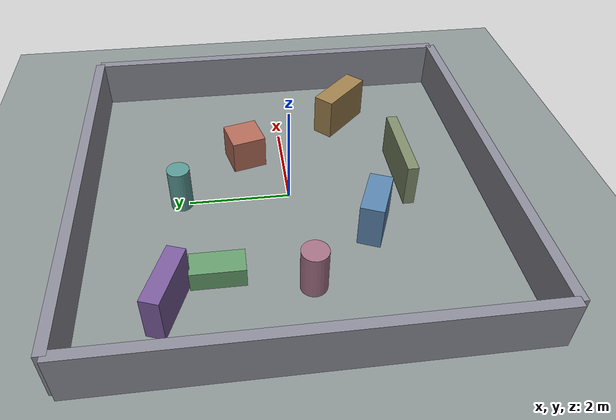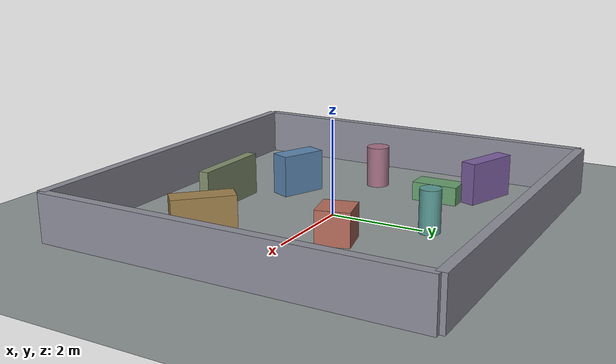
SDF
<?xml version="1.0"?>
<sdf version="1.9">
  <world name="rover_test_world">
    <plugin filename="gz-sim-physics-system" name="gz::sim::systems::Physics"/>
    <plugin filename="gz-sim-user-commands-system" name="gz::sim::systems::UserCommands"/>
    <plugin filename="gz-sim-scene-broadcaster-system" name="gz::sim::systems::SceneBroadcaster"/>
    <plugin filename="gz-sim-sensors-system" name="gz::sim::systems::Sensors">
      <render_engine>ogre2</render_engine>
    </plugin>

    <gravity>0 0 -9.81</gravity>
    <magnetic_field>6e-06 2.3e-05 -4.2e-05</magnetic_field>
    <atmosphere type="adiabatic"/>

    <scene>
      <ambient>0.45 0.45 0.45 1</ambient>
      <background>0.78 0.82 0.86 1</background>
      <shadows>true</shadows>
    </scene>

    <light name="sun" type="directional">
      <cast_shadows>true</cast_shadows>
      <pose>0 0 10 0 0 0</pose>
      <diffuse>0.8 0.8 0.8 1</diffuse>
      <specular>0.2 0.2 0.2 1</specular>
      <direction>-0.4 0.2 -0.9</direction>
    </light>

    <model name="ground_plane">
      <static>true</static>
      <link name="link">
        <collision name="collision">
          <geometry>
            <plane>
              <normal>0 0 1</normal>
              <size>20 20</size>
            </plane>
          </geometry>
        </collision>
        <visual name="visual">
          <geometry>
            <plane>
              <normal>0 0 1</normal>
              <size>20 20</size>
            </plane>
          </geometry>
          <material>
            <ambient>0.55 0.58 0.58 1</ambient>
            <diffuse>0.55 0.58 0.58 1</diffuse>
          </material>
        </visual>
      </link>
    </model>

    <model name="north_wall">
      <static>true</static>
      <pose>0 4.0 0.5 0 0 0</pose>
      <link name="link">
        <collision name="collision">
          <geometry><box><size>8.0 0.2 1.0</size></box></geometry>
        </collision>
        <visual name="visual">
          <geometry><box><size>8.0 0.2 1.0</size></box></geometry>
          <material><ambient>0.55 0.55 0.60 1</ambient><diffuse>0.55 0.55 0.60 1</diffuse></material>
        </visual>
      </link>
    </model>

    <model name="south_wall">
      <static>true</static>
      <pose>0 -4.0 0.5 0 0 0</pose>
      <link name="link">
        <collision name="collision">
          <geometry><box><size>8.0 0.2 1.0</size></box></geometry>
        </collision>
        <visual name="visual">
          <geometry><box><size>8.0 0.2 1.0</size></box></geometry>
          <material><ambient>0.55 0.55 0.60 1</ambient><diffuse>0.55 0.55 0.60 1</diffuse></material>
        </visual>
      </link>
    </model>

    <model name="west_wall">
      <static>true</static>
      <pose>-4.0 0 0.5 0 0 0</pose>
      <link name="link">
        <collision name="collision">
          <geometry><box><size>0.2 8.0 1.0</size></box></geometry>
        </collision>
        <visual name="visual">
          <geometry><box><size>0.2 8.0 1.0</size></box></geometry>
          <material><ambient>0.55 0.55 0.60 1</ambient><diffuse>0.55 0.55 0.60 1</diffuse></material>
        </visual>
      </link>
    </model>

    <model name="east_wall">
      <static>true</static>
      <pose>4.0 0 0.5 0 0 0</pose>
      <link name="link">
        <collision name="collision">
          <geometry><box><size>0.2 8.0 1.0</size></box></geometry>
        </collision>
        <visual name="visual">
          <geometry><box><size>0.2 8.0 1.0</size></box></geometry>
          <material><ambient>0.55 0.55 0.60 1</ambient><diffuse>0.55 0.55 0.60 1</diffuse></material>
        </visual>
      </link>
    </model>

    <model name="obstacle_box_a">
      <static>true</static>
      <pose>1.3 0.8 0.35 0 0 0.25</pose>
      <link name="link">
        <collision name="collision">
          <geometry><box><size>0.7 0.7 0.7</size></box></geometry>
        </collision>
        <visual name="visual">
          <geometry><box><size>0.7 0.7 0.7</size></box></geometry>
          <material><ambient>0.70 0.42 0.35 1</ambient><diffuse>0.70 0.42 0.35 1</diffuse></material>
        </visual>
      </link>
    </model>

    <model name="obstacle_box_b">
      <static>true</static>
      <pose>-1.1 -1.5 0.45 0 0 -0.4</pose>
      <link name="link">
        <collision name="collision">
          <geometry><box><size>1.0 0.45 0.9</size></box></geometry>
        </collision>
        <visual name="visual">
          <geometry><box><size>1.0 0.45 0.9</size></box></geometry>
          <material><ambient>0.35 0.52 0.68 1</ambient><diffuse>0.35 0.52 0.68 1</diffuse></material>
        </visual>
      </link>
    </model>

    <model name="obstacle_box_c">
      <static>true</static>
      <pose>2.45 -1.45 0.45 0 0 0.78</pose>
      <link name="link">
        <collision name="collision">
          <geometry><box><size>0.45 1.25 0.9</size></box></geometry>
        </collision>
        <visual name="visual">
          <geometry><box><size>0.45 1.25 0.9</size></box></geometry>
          <material><ambient>0.62 0.50 0.30 1</ambient><diffuse>0.62 0.50 0.30 1</diffuse></material>
        </visual>
      </link>
    </model>

    <model name="obstacle_box_d">
      <static>true</static>
      <pose>-2.60 2.35 0.45 0 0 -0.35</pose>
      <link name="link">
        <collision name="collision">
          <geometry><box><size>1.20 0.35 0.9</size></box></geometry>
        </collision>
        <visual name="visual">
          <geometry><box><size>1.20 0.35 0.9</size></box></geometry>
          <material><ambient>0.48 0.36 0.62 1</ambient><diffuse>0.48 0.36 0.62 1</diffuse></material>
        </visual>
      </link>
    </model>

    <model name="obstacle_post_a">
      <static>true</static>
      <pose>0.00 2.15 0.45 0 0 0</pose>
      <link name="link">
        <collision name="collision">
          <geometry><cylinder><radius>0.22</radius><length>0.9</length></cylinder></geometry>
        </collision>
        <visual name="visual">
          <geometry><cylinder><radius>0.22</radius><length>0.9</length></cylinder></geometry>
          <material><ambient>0.35 0.60 0.58 1</ambient><diffuse>0.35 0.60 0.58 1</diffuse></material>
        </visual>
      </link>
    </model>

    <model name="obstacle_post_b">
      <static>true</static>
      <pose>-2.40 -0.15 0.45 0 0 0</pose>
      <link name="link">
        <collision name="collision">
          <geometry><cylinder><radius>0.25</radius><length>0.9</length></cylinder></geometry>
        </collision>
        <visual name="visual">
          <geometry><cylinder><radius>0.25</radius><length>0.9</length></cylinder></geometry>
          <material><ambient>0.64 0.44 0.52 1</ambient><diffuse>0.64 0.44 0.52 1</diffuse></material>
        </visual>
      </link>
    </model>

    <model name="obstacle_inner_wall">
      <static>true</static>
      <pose>0.35 -2.35 0.45 0 0 0</pose>
      <link name="link">
        <collision name="collision">
          <geometry><box><size>1.75 0.22 0.9</size></box></geometry>
        </collision>
        <visual name="visual">
          <geometry><box><size>1.75 0.22 0.9</size></box></geometry>
          <material><ambient>0.50 0.55 0.42 1</ambient><diffuse>0.50 0.55 0.42 1</diffuse></material>
        </visual>
      </link>
    </model>

    <model name="low_box_for_depth_test">
      <static>true</static>
      <pose>-2.0 1.5 0.2 0 0 0</pose>
      <link name="link">
        <collision name="collision">
          <geometry><box><size>0.5 1.0 0.4</size></box></geometry>
        </collision>
        <visual name="visual">
          <geometry><box><size>0.5 1.0 0.4</size></box></geometry>
          <material><ambient>0.40 0.62 0.43 1</ambient><diffuse>0.40 0.62 0.43 1</diffuse></material>
        </visual>
      </link>
    </model>
  </world>
</sdf>
